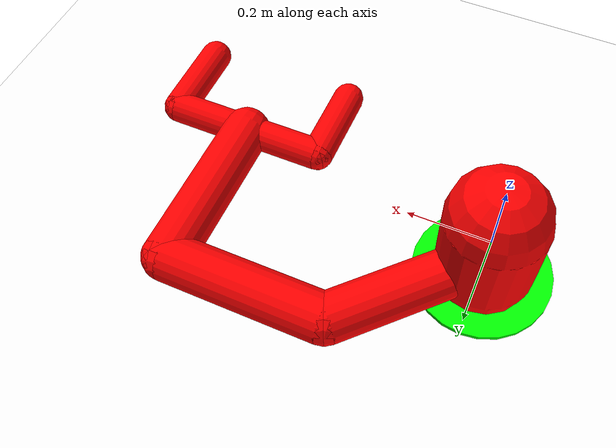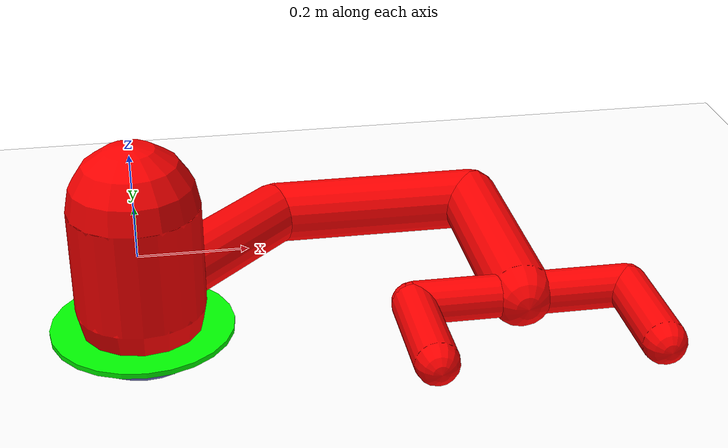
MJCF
<mujoco model="arm3d">
    <compiler inertiafromgeom="true" angle="radian" coordinate="local"/>
    <option timestep="0.01" gravity="0 0 0" iterations="20" integrator="Euler"/>

    <default>
        <joint armature='0.04' damping="1"/>
        <geom friction=".8 .1 .1" density="300" margin="0.002" condim="1" contype="1" conaffinity="1"/>
        <equality solimp="0.9 0.95 0.001" solref="0.02 1"/>
    </default>

    <worldbody>
        <light diffuse=".5 .5 .5" pos="0 0 3" dir="0 0 -1"/>
        <geom type="plane" pos="0 0.5 -0.15" size="2 2 0.1" contype="1" conaffinity="1" rgba="1 1 1 1"/>

        <body name="palm" pos="0 0 0">
            <geom type="capsule" fromto="0 0 -0.1 0 0 0.1" size="0.12" rgba="1 0 0 1"/>
            <body name="proximal_1" pos="0 0 -0.075" axisangle="0 0 1 0.785">
                <joint name="proximal_j_1" type="hinge" pos="0 0 0" axis="0 0 1" damping="1.0" limited="true" range="-2.5 2.5"/>
                <joint name="proximal_j_1_backlash" type="hinge" pos="0 0 0" axis="0 0 1"/>
                <geom rgba="1 0 0 1" type="capsule" fromto="0 0 0 0.4 0 0" size="0.06" contype="1" conaffinity="1"/>
                <body name="distal_1" pos="0.4 0 0" axisangle="0 0 1 -0.785">
                    <joint name="distal_j_1" type="hinge" pos="0 0 0" axis="0 0 1" damping="1.0" limited="true" range="-2.3213 2.3"/>
                    <joint name="distal_j_1_backlash" type="hinge" pos="0 0 0" axis="0 0 1"/>
                    <geom rgba="1 0 0 1" type="capsule" fromto="0 0 0 0.4 0 0" size="0.06" contype="1"
                          conaffinity="1"/>
                    <body name="distal_2" pos="0.4 0 0" axisangle="0 0 1 -1.57">
                        <joint name="distal_j_2" type="hinge" pos="0 0 0" axis="0 0 1" damping="1.0" limited="true" range="-2.3213 2.3"/>
                        <joint name="distal_j_2_backlash" type="hinge" pos="0 0 0" axis="0 0 1"/>
                        <geom rgba="1 0 0 1" type="capsule" fromto="0 0 0 0.4 0 0" size="0.06" contype="1"
                              conaffinity="1"/>
                        <body name="distal_4" pos="0.4 0 0">
                            <site name="tip arml" pos="0.1 -0.2 0" size="0.01"/>
                            <site name="tip armr" pos="0.1 0.2 0" size="0.01"/>
                            <geom rgba="1 0 0 1" type="capsule" fromto="0 -0.2 0 0 0.2 0" size="0.04" contype="1"
                                  conaffinity="1"/>
                            <geom rgba="1 0 0 1" type="capsule" fromto="0 -0.2 0 0.2 -0.2 0" size="0.04" contype="1"
                                  conaffinity="1"/>
                            <geom rgba="1 0 0 1" type="capsule" fromto="0 0.2 0 0.2 0.2 0" size="0.04" contype="1"
                                  conaffinity="1"/>
                        </body>
                    </body>
                </body>
            </body>
        </body>

        <body name="object" pos="0 0 -0.1">
            <geom rgba="0 0 0.5 1" type="cylinder" size="0.1 0.1 0.1" density='0.00001' contype="1" conaffinity="1"/>
            <joint name="obj_slidey" type="slide" pos="0.025 0.025 0.025" axis="0 1 0" range="-10.3213 10.3"
                   damping="0.5"/>
            <joint name="obj_slidex" type="slide" pos="0.025 0.025 0.025" axis="1 0 0" range="-10.3213 10.3"
                   damping="0.5"/>
        </body>

        <body name="goal" pos="0 0 -0.145">
            <geom rgba="0 1 0 1" type="cylinder" size="0.17 0.005 0.2" density='0.00001' contype="0"
                  conaffinity="0"/>
            <joint name="goal_slidey" type="slide" pos="0 0 0" axis="0 1 0" range="-10.3213 10.3" damping="0.5"/>
            <joint name="goal_slidex" type="slide" pos="0 0 0" axis="1 0 0" range="-10.3213 10.3" damping="0.5"/>
        </body>

    </worldbody>

    <actuator>
        <motor joint="proximal_j_1" ctrlrange="-3 3" ctrllimited="true"/>
        <motor joint="distal_j_1" ctrlrange="-3 3" ctrllimited="true"/>
        <motor joint="distal_j_2" ctrlrange="-3 3" ctrllimited="true"/>
    </actuator>
<!--         &lt;!&ndash;solref="0.02 0.2" &ndash;&gt;-->
    <equality>
        <joint name="backlash_1" joint1="proximal_j_1_backlash" polycoef="0 1 0 0 0"/>
        <joint name="backlash_2" joint1="distal_j_1_backlash" polycoef="0 1 0 0 0"/>
        <joint name="backlash_3" joint1="distal_j_2_backlash" polycoef="0 1 0 0 0"/>
    </equality>
</mujoco>
